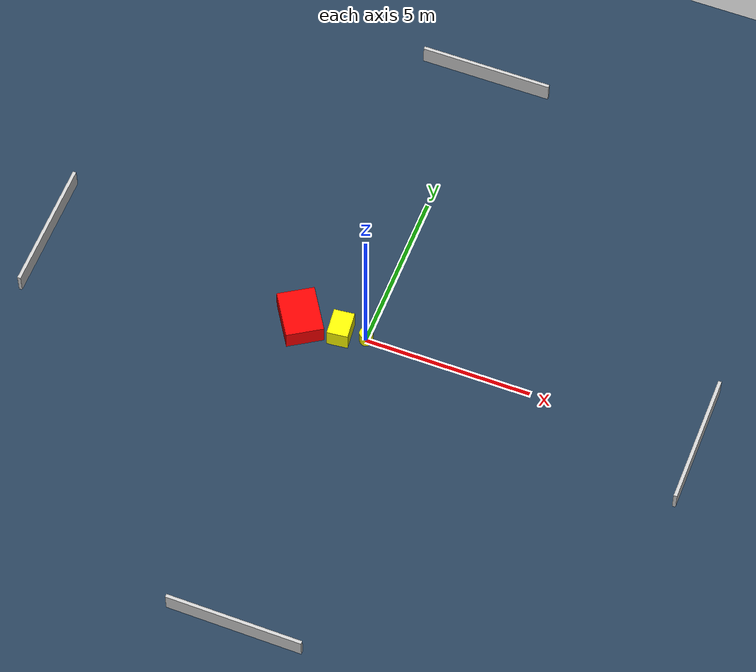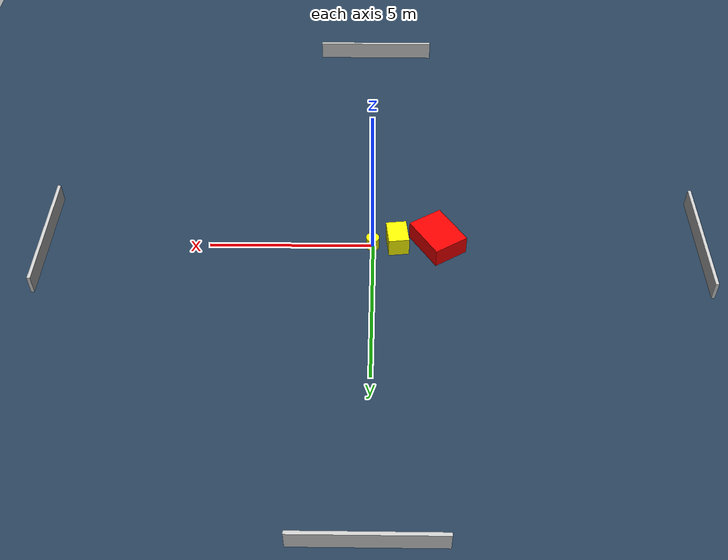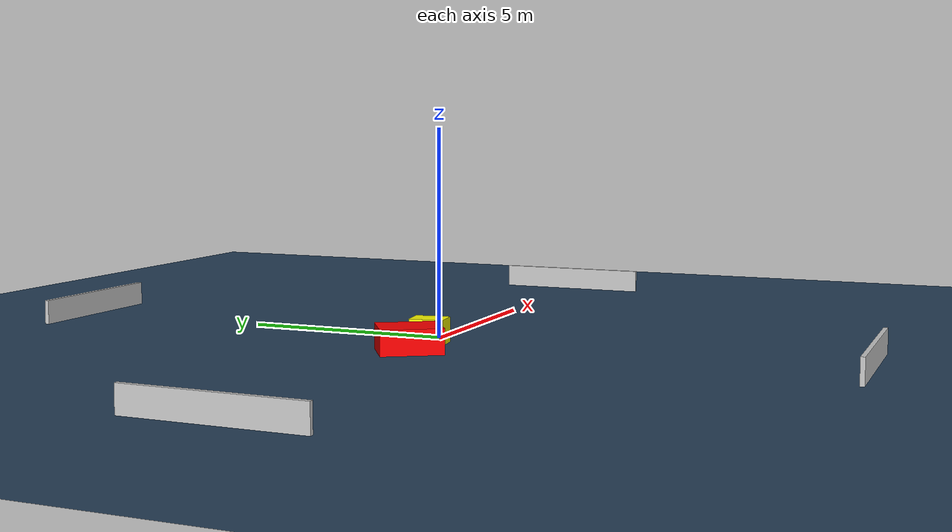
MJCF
<?xml version="1.0" ?>
<mujoco model="generated_environment">
  <option timestep="0.01" integrator="RK4" cone="elliptic"/>
  <default>
    <geom density="1"/>
  </default>
  <asset>
    <texture builtin="gradient" height="3072" name="skybox" rgb1="0.3 0.5 0.7" rgb2="0 0 0" type="skybox" width="512"/>
    <texture builtin="checker" height="300" name="groundplane" rgb1="0.2 0.3 0.4" rgb2="0.1 0.2 0.3" type="2d" width="300"/>
    <material name="groundplane" reflectance="0.2" texrepeat="5 5" texture="groundplane"/>
  </asset>
  <worldbody>
    <light dir="0 0 -1" directional="true" pos="0 0 1.5"/>
    <geom condim="3" friction="0.5 0.005 0.001" material="groundplane" name="floor" pos="0 0 0" size="0 0 0.05" type="plane"/>
    <body name="walls">
      <geom name="wall_1" condim="4" pos="-10.0 0.0 0.3" rgba="0.800000011920929 0.800000011920929 0.800000011920929 1.0" size="0.05 2.0 0.3" type="box"/>
      <geom name="wall_2" condim="4" pos="10.0 0.0 0.3" rgba="0.800000011920929 0.800000011920929 0.800000011920929 1.0" size="0.05 2.0 0.3" type="box"/>
      <geom name="wall_3" condim="4" pos="0.0 -10.0 0.3" rgba="0.800000011920929 0.800000011920929 0.800000011920929 1.0" size="2.0 0.05 0.3" type="box"/>
      <geom name="wall_4" condim="4" pos="0.0 10.0 0.3" rgba="0.800000011920929 0.800000011920929 0.800000011920929 1.0" size="2.0 0.05 0.3" type="box"/>
    </body>
    <body name="robot">
      <joint name="joint_x" type="slide" pos="0 0 0" axis="1 0 0"/>
      <joint name="joint_y" type="slide" pos="0 0 0" axis="0 1 0"/>
      <geom name="robot" type="cylinder" pos="0.0 0.0 0.2" size="0.2 0.2 0.0" mass="5.0" friction="1.0 0.005 0.0001" condim="4" rgba="1.0 1.0 0.0 1.0"/>
    </body>
    <body name="obstacle_1_movable">
      <geom name="obstacle_1_movable" condim="4" pos="-0.755664702705657 -0.07084514508219936 0.3" euler="0 0 6.379300316418077" friction="0.0 0.005 0.001" rgba="1.0 1.0 0.0 1.0" size="0.31118143675658216 0.41022649933166394 0.3" type="box" mass="0.1"/>
      <joint type="free"/>
    </body>
    <body name="obstacle_2_static">
      <geom name="obstacle_2_static" condim="4" pos="-1.9907436676545998 -0.11636176624407123 0.3" euler="0 0 212.63590026408653" friction="0.0 0.005 0.001" rgba="1.0 0.0 0.0 1.0" size="0.5577218092293761 0.7271341364083648 0.3" type="box"/>
    </body>
  </worldbody>
  <actuator>
    <motor name="actuator_x" joint="joint_x" gear="1" ctrlrange="-1 1"/>
    <motor name="actuator_y" joint="joint_y" gear="1" ctrlrange="-1 1"/>
  </actuator>
</mujoco>
